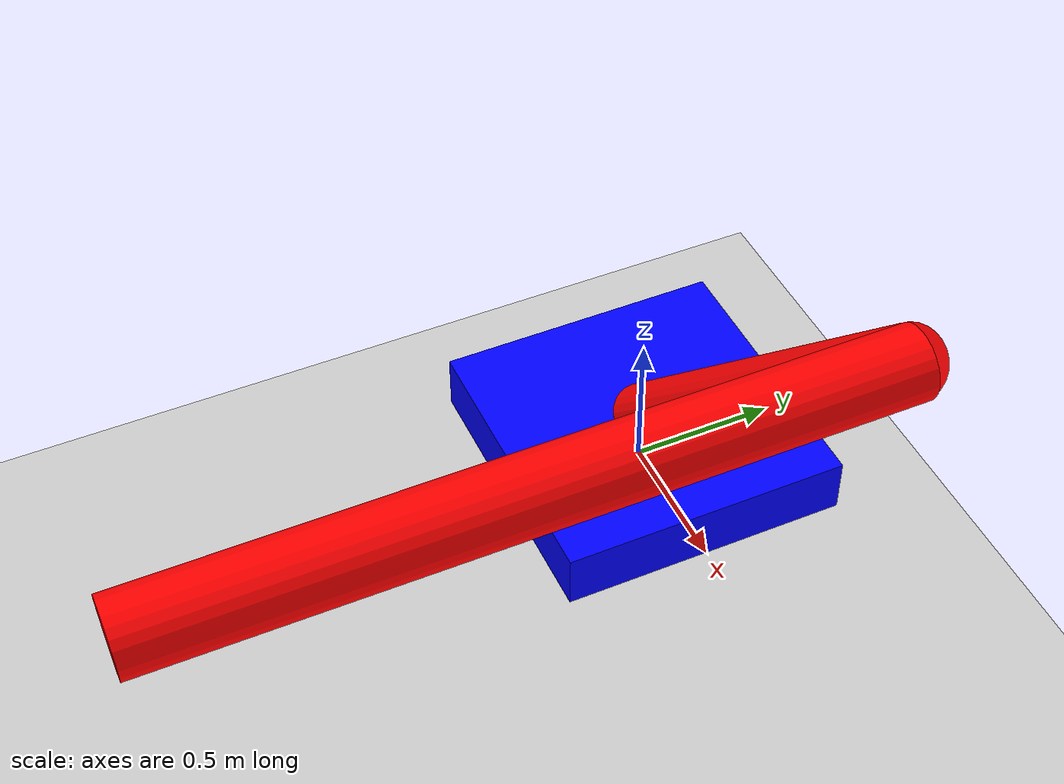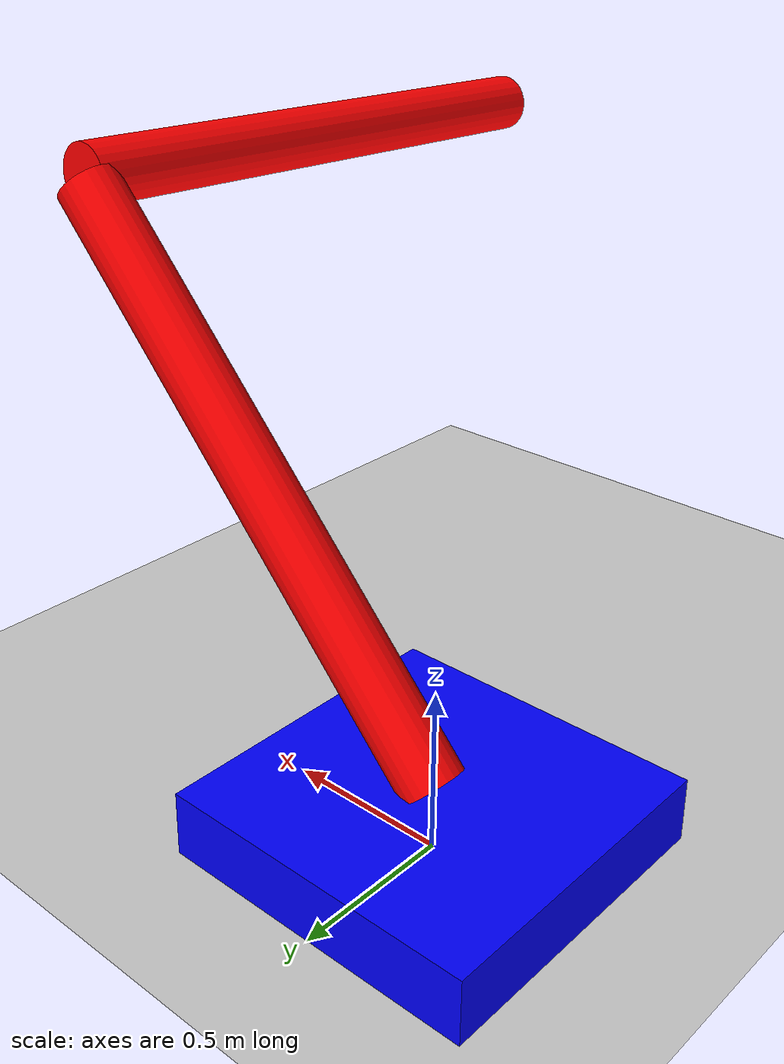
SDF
<?xml version="1.0" ?>
<sdf version="1.10">
    <world name="current_world">
        <physics name="1ms" type="ignored">
            <max_step_size>0.001</max_step_size>
            <real_time_factor>100.0</real_time_factor>
        </physics>
        <plugin
            filename="gz-sim-physics-system"
            name="gz::sim::systems::Physics">
        </plugin>
        <plugin
            filename="gz-sim-user-commands-system"
            name="gz::sim::systems::UserCommands">
        </plugin>
        <plugin
            filename="gz-sim-scene-broadcaster-system"
            name="gz::sim::systems::SceneBroadcaster">
        </plugin>
    <gui fullscreen="0">

	<!-- 3D scene -->
	<plugin filename="MinimalScene" name="3D View">
	    <gz-gui>
		<title>3D View</title>
		<property type="bool" key="showTitleBar">false</property>
		<property type="string" key="state">docked</property>
	    </gz-gui>
	    <engine>ogre</engine>
	    <scene>scene</scene>
	    <ambient_light>0.4 0.4 0.4</ambient_light>
	    <background_color>0.8 0.8 0.8</background_color>
	    <camera_pose>-6 0 6 0 0.5 0</camera_pose>
	</plugin>

	<!-- Plugins that add functionality to the scene -->
	<plugin filename="EntityContextMenuPlugin" name="Entity context menu">
	    <gz-gui>
		<property key="state" type="string">floating</property>
		<property key="width" type="double">5</property>
		<property key="height" type="double">5</property>
		<property key="showTitleBar" type="bool">false</property>
	    </gz-gui>
	</plugin>

	<plugin filename="GzSceneManager" name="Scene Manager">
	    <gz-gui>
		<property key="resizable" type="bool">false</property>
		<property key="width" type="double">5</property>
		<property key="height" type="double">5</property>
		<property key="state" type="string">floating</property>
		<property key="showTitleBar" type="bool">false</property>
	    </gz-gui>
	</plugin>

	<plugin filename="InteractiveViewControl" name="Interactive view control">
	    <gz-gui>
		<property key="resizable" type="bool">false</property>
		<property key="width" type="double">5</property>
		<property key="height" type="double">5</property>
		<property key="state" type="string">floating</property>
		<property key="showTitleBar" type="bool">false</property>
	    </gz-gui>
	</plugin>

	<plugin filename="CameraTracking" name="Camera Tracking">
	    <gz-gui>
		<property key="resizable" type="bool">false</property>
		<property key="width" type="double">5</property>
		<property key="height" type="double">5</property>
		<property key="state" type="string">floating</property>
		<property key="showTitleBar" type="bool">false</property>
	    </gz-gui>
	</plugin>

	<plugin filename="MarkerManager" name="Marker manager">
	    <gz-gui>
		<property key="resizable" type="bool">false</property>
		<property key="width" type="double">5</property>
		<property key="height" type="double">5</property>
		<property key="state" type="string">floating</property>
		<property key="showTitleBar" type="bool">false</property>
	    </gz-gui>
	</plugin>

	<plugin filename="SelectEntities" name="Select Entities">
	    <gz-gui>
		<property key="resizable" type="bool">false</property>
		<property key="width" type="double">5</property>
		<property key="height" type="double">5</property>
		<property key="state" type="string">floating</property>
		<property key="showTitleBar" type="bool">false</property>
	    </gz-gui>
	</plugin>

	<plugin filename="Spawn" name="Spawn Entities">
	    <gz-gui>
		<property key="resizable" type="bool">false</property>
		<property key="width" type="double">5</property>
		<property key="height" type="double">5</property>
		<property key="state" type="string">floating</property>
		<property key="showTitleBar" type="bool">false</property>
	    </gz-gui>
	</plugin>

	<plugin filename="VisualizationCapabilities" name="Visualization Capabilities">
	    <gz-gui>
		<property key="resizable" type="bool">false</property>
		<property key="width" type="double">5</property>
		<property key="height" type="double">5</property>
		<property key="state" type="string">floating</property>
		<property key="showTitleBar" type="bool">false</property>
	    </gz-gui>
	</plugin>

	<!-- World control -->
	<plugin filename="WorldControl" name="World control">
	    <gz-gui>
		<title>World control</title>
		<property type="bool" key="showTitleBar">false</property>
		<property type="bool" key="resizable">false</property>
		<property type="double" key="height">72</property>
		<property type="double" key="z">1</property>
		<property type="string" key="state">floating</property>
		<anchors target="3D View">
		    <line own="left" target="left"/>
		    <line own="bottom" target="bottom"/>
		</anchors>
	    </gz-gui>
	    <play_pause>true</play_pause>
	    <step>true</step>
	    <start_paused>true</start_paused>
	    <use_event>true</use_event>
	</plugin>

	<!-- World statistics -->
	<plugin filename="WorldStats" name="World stats">
	    <gz-gui>
		<title>World stats</title>
		<property type="bool" key="showTitleBar">false</property>
		<property type="bool" key="resizable">false</property>
		<property type="double" key="height">110</property>
		<property type="double" key="width">290</property>
		<property type="double" key="z">1</property>
		<property type="string" key="state">floating</property>
		<anchors target="3D View">
		    <line own="right" target="right"/>
		    <line own="bottom" target="bottom"/>
		</anchors>
	    </gz-gui>
	    <sim_time>true</sim_time>
	    <real_time>true</real_time>
	    <real_time_factor>true</real_time_factor>
	    <iterations>true</iterations>
	</plugin>

	<!-- Insert simple shapes -->
	<plugin filename="Shapes" name="Shapes">
	    <gz-gui>
		<property key="resizable" type="bool">false</property>
		<property key="x" type="double">0</property>
		<property key="y" type="double">0</property>
		<property key="width" type="double">300</property>
		<property key="height" type="double">50</property>
		<property key="state" type="string">floating</property>
		<property key="showTitleBar" type="bool">false</property>
		<property key="cardBackground" type="string">#666666</property>
	    </gz-gui>
	</plugin>

	<!-- Insert lights -->
	<plugin filename="Lights" name="Lights">
	    <gz-gui>
		<property key="resizable" type="bool">false</property>
		<property key="x" type="double">300</property>
		<property key="y" type="double">0</property>
		<property key="width" type="double">150</property>
		<property key="height" type="double">50</property>
		<property key="state" type="string">floating</property>
		<property key="showTitleBar" type="bool">false</property>
		<property key="cardBackground" type="string">#666666</property>
	    </gz-gui>
	</plugin>

	<!-- Translate / rotate -->
	<plugin filename="TransformControl" name="Transform control">
	    <gz-gui>
		<property key="resizable" type="bool">false</property>
		<property key="x" type="double">0</property>
		<property key="y" type="double">50</property>
		<property key="width" type="double">250</property>
		<property key="height" type="double">50</property>
		<property key="state" type="string">floating</property>
		<property key="showTitleBar" type="bool">false</property>
		<property key="cardBackground" type="string">#777777</property>
	    </gz-gui>
	</plugin>

	<!-- Screenshot -->
	<plugin filename="Screenshot" name="Screenshot">
	    <gz-gui>
		<property key="resizable" type="bool">false</property>
		<property key="x" type="double">250</property>
		<property key="y" type="double">50</property>
		<property key="width" type="double">50</property>
		<property key="height" type="double">50</property>
		<property key="state" type="string">floating</property>
		<property key="showTitleBar" type="bool">false</property>
		<property key="cardBackground" type="string">#777777</property>
	    </gz-gui>
	</plugin>

	<!-- Copy/Paste -->
	<plugin filename="CopyPaste" name="CopyPaste">
	    <gz-gui>
		<property key="resizable" type="bool">false</property>
		<property key="x" type="double">300</property>
		<property key="y" type="double">50</property>
		<property key="width" type="double">100</property>
		<property key="height" type="double">50</property>
		<property key="state" type="string">floating</property>
		<property key="showTitleBar" type="bool">false</property>
		<property key="cardBackground" type="string">#777777</property>
	    </gz-gui>
	</plugin>

	<!-- Inspector -->
	<plugin filename="ComponentInspector" name="Component inspector">
	    <gz-gui>
		<property type="bool" key="showTitleBar">false</property>
		<property type="string" key="state">docked</property>
	    </gz-gui>
	</plugin>

	<!-- Entity tree -->
	<plugin filename="EntityTree" name="Entity tree">
	    <gz-gui>
		<property type="bool" key="showTitleBar">false</property>
		<property type="string" key="state">docked</property>
	    </gz-gui>
	</plugin>
      </gui>
	<light type="directional" name="sun">
	    <cast_shadows>true</cast_shadows>
	    <pose>0 0 10 0 0 0</pose>
	    <diffuse>0.8 0.8 0.8 1</diffuse>
	    <specular>0.2 0.2 0.2 1</specular>
	    <attenuation>
		<range>1000</range>
		<constant>0.9</constant>
		<linear>0.01</linear>
		<quadratic>0.001</quadratic>
	    </attenuation>
	    <direction>-0.5 0.1 -0.9</direction>
	</light>
	<model name="ground_plane">
	    <static>true</static>
	    <link name="lnkGround">
		<collision name="collision">
		<geometry>
		    <plane>
		    <normal>0 0 1</normal>
		    </plane>
		</geometry>
		</collision>
		<visual name="visual">
		<geometry>
		    <plane>
		    <normal>0 0 1</normal>
		    <size>100 100</size>
		    </plane>
		</geometry>
		<material>
		    <ambient>0.8 0.8 0.8 1</ambient>
		    <diffuse>0.8 0.8 0.8 1</diffuse>
		    <specular>0.8 0.8 0.8 1</specular>
		</material>
		</visual>
	    </link>
	</model>
    <model name="mdlLeg">
      <pose>0 0 0.1 0 0 0</pose>
	<link name="lnkPlantar">
	<inertial>
	  <mass>1</mass>
	  <inertia>  <ixx>0.083</ixx> <iyy>0.083</iyy>
	    <izz>0.166</izz>
	    <ixy>0</ixy>
	    <ixz>0</ixz>
	    <iyz>0</iyz>
	  </inertia>
	</inertial>
	<collision name="collision">
	  <geometry>
	    <box>
	      <size>2 1 0.2</size> </box>
	  </geometry>
	   <surface>
	    <friction>
	      <ode>
		<mu>0.5</mu>
		<mu2>0.5</mu2>
	      </ode>
	    </friction>
	  </surface>
	</collision>
	<visual name="visual">
	  <geometry>
	    <box>
	      <size>1 1 0.2</size>
	    </box>
	  </geometry>
	  <material>
	    <ambient>0 0 1 1</ambient>  <diffuse>0 0 1 1</diffuse>
	    <specular>0.1 0.1 0.1 1</specular>
	  </material>
	</visual>
	</link>

	<link name="lnkTibia">
		<pose relative_to="jntPlantar">0 0 1 0 0 0</pose>
		<inertial>
		  <mass>0.5</mass>
		  <inertia>
		    <ixx>0.01</ixx>  <iyy>0.01</iyy>
		    <izz>0.001</izz>
		    <ixy>0</ixy>
		    <ixz>0</ixz>
		    <iyz>0</iyz>
		  </inertia>
		</inertial>
		<visual name="visual">
		  <geometry>
		    <cylinder>
		      <radius>0.1</radius>
		      <length>2</length>
		    </cylinder>
		  </geometry>
		  <material>
		    <ambient>1 0 0 1</ambient>  <diffuse>1 0 0 1</diffuse>
		    <specular>0.1 0.1 0.1 1</specular>
		  </material>
		</visual>
	</link>

	<link name="lnkL">
		<pose relative_to="K0">0 -1 0 1.6 0 0</pose>
		<inertial>
		  <mass>0.5</mass>
		  <inertia>
		    <ixx>0.01</ixx>  <iyy>0.01</iyy>
		    <izz>0.001</izz>
		    <ixy>0</ixy>
		    <ixz>0</ixz>
		    <iyz>0</iyz>
		  </inertia>
		</inertial>
		<visual name="visual">
		  <geometry>
		    <cylinder>
		      <radius>0.1</radius>
		      <length>2</length>
		    </cylinder>
		  </geometry>
		  <material>
		    <ambient>1 0 0 1</ambient>  <diffuse>1 0 0 1</diffuse>
		    <specular>0.1 0.1 0.1 1</specular>
		  </material>
		</visual>
	</link>

	<frame name="K0" attached_to="lnkTibia">
		<pose>0 0 1 0 0 0</pose>
	</frame>

      <joint name="jntPlantar" type="universal">
        <parent>lnkPlantar</parent>
        <child>lnkTibia</child>
        <pose relative_to="lnkPlantar">0 0 0.1 0 .75 0</pose>
        <axis>
          <xyz>1 0 0</xyz>
        </axis>
        <axis2>
          <xyz>0 1 0</xyz>
        </axis2>
      </joint>
      <joint name="weld1" type="fixed">
      	<parent>lnkTibia</parent>
      	<child>lnkL</child>
      </joint>
      </model>
    </world>
</sdf>
